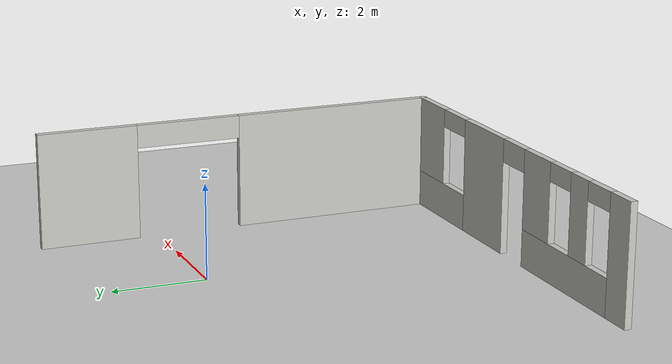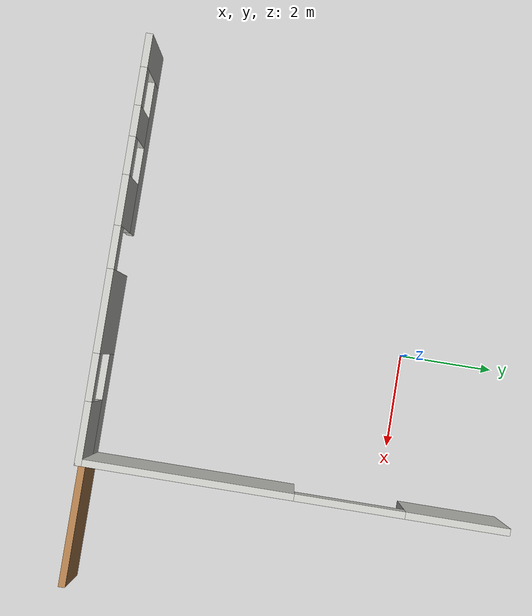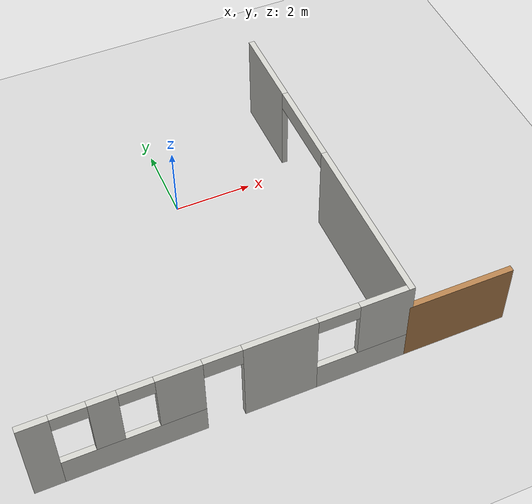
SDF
<sdf version="1.6">
 <world name="default">
  <model name="ground_plane">
   <static>1</static>
   <link name="link">
    <collision name="collision">
     <geometry><plane><normal>0 0 1</normal><size>100 100</size></plane></geometry>
     <surface>
      <contact><collide_bitmask>65535</collide_bitmask></contact>
      <friction><ode><mu>100</mu><mu2>50</mu2></ode></friction>
     </surface>
    </collision>
    <visual name="visual">
     <cast_shadows>0</cast_shadows>
     <geometry><plane><normal>0 0 1</normal><size>100 100</size></plane></geometry>
     <material>
      <script><uri>file://media/materials/scripts/gazebo.material</uri><name>Gazebo/Grey</name></script>
     </material>
    </visual>
   </link>
  </model>
  <model name="house">
   <link name="Wall_2">
    <pose>-1.29996 -6.34794 0 0 0 -0.000226</pose>
    <inertial>
     <mass>1</mass>
     <inertia><ixx>1</ixx><ixy>0</ixy><ixz>0</ixz><iyy>1</iyy><iyz>0</iyz><izz>1</izz></inertia>
    </inertial>
    <visual name="Wall_2_Visual_2">
     <pose>-2.14 0 0.4 0 -0 0</pose>
     <geometry><box><size>3.31 0.15 0.8</size></box></geometry>
     <material>
      <script><uri>file://media/materials/scripts/gazebo.material</uri><name>Gazebo/CeilingTiled</name></script>
      <ambient>1 1 1 1</ambient>
      <shader type="pixel"><normal_map>__default__</normal_map></shader>
      <diffuse>0.7 0.7 0.7 1</diffuse>
      <specular>0.01 0.01 0.01 1</specular>
      <emissive>0 0 0 1</emissive>
     </material>
     <meta><layer>0</layer></meta>
    </visual>
    <visual name="Wall_2_Visual_3">
     <pose>3.33488 0 0.4 0 -0 0</pose>
     <geometry><box><size>2.33037 0.15 0.8</size></box></geometry>
     <material>
      <script><uri>file://media/materials/scripts/gazebo.material</uri><name>Gazebo/CeilingTiled</name></script>
      <ambient>1 1 1 1</ambient>
      <shader type="pixel"><normal_map>__default__</normal_map></shader>
      <diffuse>0.7 0.7 0.7 1</diffuse>
      <specular>0.01 0.01 0.01 1</specular>
      <emissive>0 0 0 1</emissive>
     </material>
     <meta><layer>0</layer></meta>
    </visual>
    <visual name="Wall_2_Visual_4">
     <pose>-2.67 0 1.65 0 -0 0</pose>
     <geometry><box><size>0.65 0.15 1.7</size></box></geometry>
     <material>
      <script><uri>file://media/materials/scripts/gazebo.material</uri><name>Gazebo/CeilingTiled</name></script>
      <ambient>1 1 1 1</ambient>
      <shader type="pixel"><normal_map>__default__</normal_map></shader>
      <diffuse>0.7 0.7 0.7 1</diffuse>
      <specular>0.01 0.01 0.01 1</specular>
      <emissive>0 0 0 1</emissive>
     </material>
     <meta><layer>0</layer></meta>
    </visual>
    <visual name="Wall_2_Visual_1">
     <pose>1.29235 0 1.25 0 -0 0</pose>
     <geometry><box><size>1.75469 0.15 2.5</size></box></geometry>
     <material>
      <script><uri>file://media/materials/scripts/gazebo.material</uri><name>Gazebo/CeilingTiled</name></script>
      <ambient>1 1 1 1</ambient>
      <shader type="pixel"><normal_map>__default__</normal_map></shader>
      <diffuse>0.7 0.7 0.7 1</diffuse>
      <specular>0.01 0.01 0.01 1</specular>
      <emissive>0 0 0 1</emissive>
     </material>
     <meta><layer>0</layer></meta>
    </visual>
    <visual name="Wall_2_Visual_11">
     <pose>2.66969 0 2.3 0 -0 0</pose>
     <geometry><box><size>1 0.15 0.4</size></box></geometry>
     <material>
      <script><uri>file://media/materials/scripts/gazebo.material</uri><name>Gazebo/CeilingTiled</name></script>
      <ambient>1 1 1 1</ambient>
      <shader type="pixel"><normal_map>__default__</normal_map></shader>
      <diffuse>0.7 0.7 0.7 1</diffuse>
      <specular>0.01 0.01 0.01 1</specular>
      <emissive>0 0 0 1</emissive>
     </material>
     <meta><layer>0</layer></meta>
    </visual>
    <visual name="Wall_2_Visual_6">
     <pose>-1.015 0 1.65 0 -0 0</pose>
     <geometry><box><size>1.06 0.15 1.7</size></box></geometry>
     <material>
      <script><uri>file://media/materials/scripts/gazebo.material</uri><name>Gazebo/CeilingTiled</name></script>
      <ambient>1 1 1 1</ambient>
      <shader type="pixel"><normal_map>__default__</normal_map></shader>
      <diffuse>0.7 0.7 0.7 1</diffuse>
      <specular>0.01 0.01 0.01 1</specular>
      <emissive>0 0 0 1</emissive>
     </material>
     <meta><layer>0</layer></meta>
    </visual>
    <visual name="Wall_2_Visual_5">
     <pose>-1.015 0 1.65 0 -0 0</pose>
     <geometry><box><size>1.06 0.15 1.7</size></box></geometry>
     <material>
      <script><uri>file://media/materials/scripts/gazebo.material</uri><name>Gazebo/CeilingTiled</name></script>
      <ambient>1 1 1 1</ambient>
      <shader type="pixel"><normal_map>__default__</normal_map></shader>
      <diffuse>0.7 0.7 0.7 1</diffuse>
      <specular>0.01 0.01 0.01 1</specular>
      <emissive>0 0 0 1</emissive>
     </material>
     <meta><layer>0</layer></meta>
    </visual>
    <visual name="Wall_2_Visual_9">
     <pose>-0.035 0 2.25 0 -0 0</pose>
     <geometry><box><size>0.9 0.15 0.5</size></box></geometry>
     <material>
      <script><uri>file://media/materials/scripts/gazebo.material</uri><name>Gazebo/CeilingTiled</name></script>
      <ambient>1 1 1 1</ambient>
      <shader type="pixel"><normal_map>__default__</normal_map></shader>
      <diffuse>0.7 0.7 0.7 1</diffuse>
      <specular>0.01 0.01 0.01 1</specular>
      <emissive>0 0 0 1</emissive>
     </material>
     <meta><layer>0</layer></meta>
    </visual>
    <visual name="Wall_2_Visual_12">
     <pose>-1.945 0 2.3 0 -0 0</pose>
     <geometry><box><size>0.8 0.15 0.4</size></box></geometry>
     <material>
      <script><uri>file://media/materials/scripts/gazebo.material</uri><name>Gazebo/CeilingTiled</name></script>
      <ambient>1 1 1 1</ambient>
      <shader type="pixel"><normal_map>__default__</normal_map></shader>
      <diffuse>0.7 0.7 0.7 1</diffuse>
      <specular>0.01 0.01 0.01 1</specular>
      <emissive>0 0 0 1</emissive>
     </material>
     <meta><layer>0</layer></meta>
    </visual>
    <visual name="Wall_2_Visual_0">
     <pose>-4.14753 0 1.25 0 -0 0</pose>
     <geometry><box><size>0.705065 0.15 2.5</size></box></geometry>
     <material>
      <script><uri>file://media/materials/scripts/gazebo.material</uri><name>Gazebo/CeilingTiled</name></script>
      <ambient>1 1 1 1</ambient>
      <shader type="pixel"><normal_map>__default__</normal_map></shader>
      <diffuse>1 1 1 1</diffuse>
      <specular>0 0 0 1</specular>
      <emissive>0 0 0 1</emissive>
     </material>
     <meta><layer>0</layer></meta>
    </visual>
    <visual name="Wall_2_Visual_10">
     <pose>-3.395 0 2.3 0 -0 0</pose>
     <geometry><box><size>0.8 0.15 0.4</size></box></geometry>
     <material>
      <script><uri>file://media/materials/scripts/gazebo.material</uri><name>Gazebo/CeilingTiled</name></script>
      <ambient>1 1 1 1</ambient>
      <shader type="pixel"><normal_map>__default__</normal_map></shader>
      <diffuse>0.7 0.7 0.7 1</diffuse>
      <specular>0.01 0.01 0.01 1</specular>
      <emissive>0 0 0 1</emissive>
     </material>
     <meta><layer>0</layer></meta>
    </visual>
    <visual name="Wall_2_Visual_7">
     <pose>3.83488 0 1.65 0 -0 0</pose>
     <geometry><box><size>1.33037 0.15 1.7</size></box></geometry>
     <material>
      <script><uri>file://media/materials/scripts/gazebo.material</uri><name>Gazebo/CeilingTiled</name></script>
      <ambient>1 1 1 1</ambient>
      <shader type="pixel"><normal_map>__default__</normal_map></shader>
      <diffuse>0.7 0.7 0.7 1</diffuse>
      <specular>0.01 0.01 0.01 1</specular>
      <emissive>0 0 0 1</emissive>
     </material>
     <meta><layer>0</layer></meta>
    </visual>
    <visual name="Wall_2_Visual_8">
     <pose>-0.035 0 2.25 0 -0 0</pose>
     <geometry><box><size>0.9 0.15 0.5</size></box></geometry>
     <material>
      <script><uri>file://media/materials/scripts/gazebo.material</uri><name>Gazebo/CeilingTiled</name></script>
      <ambient>1 1 1 1</ambient>
      <shader type="pixel"><normal_map>__default__</normal_map></shader>
      <diffuse>0.7 0.7 0.7 1</diffuse>
      <specular>0.01 0.01 0.01 1</specular>
      <emissive>0 0 0 1</emissive>
     </material>
     <meta><layer>0</layer></meta>
    </visual>
    <collision name="Wall_2_Collision_11">
     <pose>2.66969 0 2.3 0 -0 0</pose>
     <geometry><box><size>1 0.15 0.4</size></box></geometry>
     <surface>
      <friction>
       <ode><mu>1</mu><mu2>1</mu2><fdir1>0 0 0</fdir1><slip1>0</slip1><slip2>0</slip2></ode>
       <torsional>
        <coefficient>1</coefficient>
        <patch_radius>0</patch_radius>
        <surface_radius>0</surface_radius>
        <use_patch_radius>1</use_patch_radius>
        <ode><slip>0</slip></ode>
       </torsional>
      </friction>
      <bounce><restitution_coefficient>0</restitution_coefficient><threshold>1e+06</threshold></bounce>
      <contact>
       <collide_without_contact>0</collide_without_contact>
       <collide_without_contact_bitmask>1</collide_without_contact_bitmask>
       <collide_bitmask>1</collide_bitmask>
       <ode>
        <soft_cfm>0</soft_cfm>
        <soft_erp>0.2</soft_erp>
        <kp>1e+13</kp>
        <kd>1</kd>
        <max_vel>0.01</max_vel>
        <min_depth>0</min_depth>
       </ode>
       <bullet>
        <split_impulse>1</split_impulse>
        <split_impulse_penetration_threshold>-0.01</split_impulse_penetration_threshold>
        <soft_cfm>0</soft_cfm>
        <soft_erp>0.2</soft_erp>
        <kp>1e+13</kp>
        <kd>1</kd>
       </bullet>
      </contact>
     </surface>
    </collision>
    <collision name="Wall_2_Collision_8">
     <pose>-0.035 0 2.25 0 -0 0</pose>
     <geometry><box><size>0.9 0.15 0.5</size></box></geometry>
     <surface>
      <friction>
       <ode><mu>1</mu><mu2>1</mu2><fdir1>0 0 0</fdir1><slip1>0</slip1><slip2>0</slip2></ode>
       <torsional>
        <coefficient>1</coefficient>
        <patch_radius>0</patch_radius>
        <surface_radius>0</surface_radius>
        <use_patch_radius>1</use_patch_radius>
        <ode><slip>0</slip></ode>
       </torsional>
      </friction>
      <bounce><restitution_coefficient>0</restitution_coefficient><threshold>1e+06</threshold></bounce>
      <contact>
       <collide_without_contact>0</collide_without_contact>
       <collide_without_contact_bitmask>1</collide_without_contact_bitmask>
       <collide_bitmask>1</collide_bitmask>
       <ode>
        <soft_cfm>0</soft_cfm>
        <soft_erp>0.2</soft_erp>
        <kp>1e+13</kp>
        <kd>1</kd>
        <max_vel>0.01</max_vel>
        <min_depth>0</min_depth>
       </ode>
       <bullet>
        <split_impulse>1</split_impulse>
        <split_impulse_penetration_threshold>-0.01</split_impulse_penetration_threshold>
        <soft_cfm>0</soft_cfm>
        <soft_erp>0.2</soft_erp>
        <kp>1e+13</kp>
        <kd>1</kd>
       </bullet>
      </contact>
     </surface>
    </collision>
    <collision name="Wall_2_Collision_4">
     <pose>-2.67 0 1.65 0 -0 0</pose>
     <geometry><box><size>0.65 0.15 1.7</size></box></geometry>
     <surface>
      <friction>
       <ode><mu>1</mu><mu2>1</mu2><fdir1>0 0 0</fdir1><slip1>0</slip1><slip2>0</slip2></ode>
       <torsional>
        <coefficient>1</coefficient>
        <patch_radius>0</patch_radius>
        <surface_radius>0</surface_radius>
        <use_patch_radius>1</use_patch_radius>
        <ode><slip>0</slip></ode>
       </torsional>
      </friction>
      <bounce><restitution_coefficient>0</restitution_coefficient><threshold>1e+06</threshold></bounce>
      <contact>
       <collide_without_contact>0</collide_without_contact>
       <collide_without_contact_bitmask>1</collide_without_contact_bitmask>
       <collide_bitmask>1</collide_bitmask>
       <ode>
        <soft_cfm>0</soft_cfm>
        <soft_erp>0.2</soft_erp>
        <kp>1e+13</kp>
        <kd>1</kd>
        <max_vel>0.01</max_vel>
        <min_depth>0</min_depth>
       </ode>
       <bullet>
        <split_impulse>1</split_impulse>
        <split_impulse_penetration_threshold>-0.01</split_impulse_penetration_threshold>
        <soft_cfm>0</soft_cfm>
        <soft_erp>0.2</soft_erp>
        <kp>1e+13</kp>
        <kd>1</kd>
       </bullet>
      </contact>
     </surface>
    </collision>
    <collision name="Wall_2_Collision_2">
     <pose>-2.14 0 0.4 0 -0 0</pose>
     <geometry><box><size>3.31 0.15 0.8</size></box></geometry>
     <surface>
      <friction>
       <ode><mu>1</mu><mu2>1</mu2><fdir1>0 0 0</fdir1><slip1>0</slip1><slip2>0</slip2></ode>
       <torsional>
        <coefficient>1</coefficient>
        <patch_radius>0</patch_radius>
        <surface_radius>0</surface_radius>
        <use_patch_radius>1</use_patch_radius>
        <ode><slip>0</slip></ode>
       </torsional>
      </friction>
      <bounce><restitution_coefficient>0</restitution_coefficient><threshold>1e+06</threshold></bounce>
      <contact>
       <collide_without_contact>0</collide_without_contact>
       <collide_without_contact_bitmask>1</collide_without_contact_bitmask>
       <collide_bitmask>1</collide_bitmask>
       <ode>
        <soft_cfm>0</soft_cfm>
        <soft_erp>0.2</soft_erp>
        <kp>1e+13</kp>
        <kd>1</kd>
        <max_vel>0.01</max_vel>
        <min_depth>0</min_depth>
       </ode>
       <bullet>
        <split_impulse>1</split_impulse>
        <split_impulse_penetration_threshold>-0.01</split_impulse_penetration_threshold>
        <soft_cfm>0</soft_cfm>
        <soft_erp>0.2</soft_erp>
        <kp>1e+13</kp>
        <kd>1</kd>
       </bullet>
      </contact>
     </surface>
    </collision>
    <collision name="Wall_2_Collision_1">
     <pose>1.29235 0 1.25 0 -0 0</pose>
     <geometry><box><size>1.75469 0.15 2.5</size></box></geometry>
     <surface>
      <friction>
       <ode><mu>1</mu><mu2>1</mu2><fdir1>0 0 0</fdir1><slip1>0</slip1><slip2>0</slip2></ode>
       <torsional>
        <coefficient>1</coefficient>
        <patch_radius>0</patch_radius>
        <surface_radius>0</surface_radius>
        <use_patch_radius>1</use_patch_radius>
        <ode><slip>0</slip></ode>
       </torsional>
      </friction>
      <bounce><restitution_coefficient>0</restitution_coefficient><threshold>1e+06</threshold></bounce>
      <contact>
       <collide_without_contact>0</collide_without_contact>
       <collide_without_contact_bitmask>1</collide_without_contact_bitmask>
       <collide_bitmask>1</collide_bitmask>
       <ode>
        <soft_cfm>0</soft_cfm>
        <soft_erp>0.2</soft_erp>
        <kp>1e+13</kp>
        <kd>1</kd>
        <max_vel>0.01</max_vel>
        <min_depth>0</min_depth>
       </ode>
       <bullet>
        <split_impulse>1</split_impulse>
        <split_impulse_penetration_threshold>-0.01</split_impulse_penetration_threshold>
        <soft_cfm>0</soft_cfm>
        <soft_erp>0.2</soft_erp>
        <kp>1e+13</kp>
        <kd>1</kd>
       </bullet>
      </contact>
     </surface>
    </collision>
    <collision name="Wall_2_Collision_12">
     <pose>-1.945 0 2.3 0 -0 0</pose>
     <geometry><box><size>0.8 0.15 0.4</size></box></geometry>
     <surface>
      <friction>
       <ode><mu>1</mu><mu2>1</mu2><fdir1>0 0 0</fdir1><slip1>0</slip1><slip2>0</slip2></ode>
       <torsional>
        <coefficient>1</coefficient>
        <patch_radius>0</patch_radius>
        <surface_radius>0</surface_radius>
        <use_patch_radius>1</use_patch_radius>
        <ode><slip>0</slip></ode>
       </torsional>
      </friction>
      <bounce><restitution_coefficient>0</restitution_coefficient><threshold>1e+06</threshold></bounce>
      <contact>
       <collide_without_contact>0</collide_without_contact>
       <collide_without_contact_bitmask>1</collide_without_contact_bitmask>
       <collide_bitmask>1</collide_bitmask>
       <ode>
        <soft_cfm>0</soft_cfm>
        <soft_erp>0.2</soft_erp>
        <kp>1e+13</kp>
        <kd>1</kd>
        <max_vel>0.01</max_vel>
        <min_depth>0</min_depth>
       </ode>
       <bullet>
        <split_impulse>1</split_impulse>
        <split_impulse_penetration_threshold>-0.01</split_impulse_penetration_threshold>
        <soft_cfm>0</soft_cfm>
        <soft_erp>0.2</soft_erp>
        <kp>1e+13</kp>
        <kd>1</kd>
       </bullet>
      </contact>
     </surface>
    </collision>
    <collision name="Wall_2_Collision_6">
     <pose>-1.015 0 1.65 0 -0 0</pose>
     <geometry><box><size>1.06 0.15 1.7</size></box></geometry>
     <surface>
      <friction>
       <ode><mu>1</mu><mu2>1</mu2><fdir1>0 0 0</fdir1><slip1>0</slip1><slip2>0</slip2></ode>
       <torsional>
        <coefficient>1</coefficient>
        <patch_radius>0</patch_radius>
        <surface_radius>0</surface_radius>
        <use_patch_radius>1</use_patch_radius>
        <ode><slip>0</slip></ode>
       </torsional>
      </friction>
      <bounce><restitution_coefficient>0</restitution_coefficient><threshold>1e+06</threshold></bounce>
      <contact>
       <collide_without_contact>0</collide_without_contact>
       <collide_without_contact_bitmask>1</collide_without_contact_bitmask>
       <collide_bitmask>1</collide_bitmask>
       <ode>
        <soft_cfm>0</soft_cfm>
        <soft_erp>0.2</soft_erp>
        <kp>1e+13</kp>
        <kd>1</kd>
        <max_vel>0.01</max_vel>
        <min_depth>0</min_depth>
       </ode>
       <bullet>
        <split_impulse>1</split_impulse>
        <split_impulse_penetration_threshold>-0.01</split_impulse_penetration_threshold>
        <soft_cfm>0</soft_cfm>
        <soft_erp>0.2</soft_erp>
        <kp>1e+13</kp>
        <kd>1</kd>
       </bullet>
      </contact>
     </surface>
    </collision>
    <collision name="Wall_2_Collision_10">
     <pose>-3.395 0 2.3 0 -0 0</pose>
     <geometry><box><size>0.8 0.15 0.4</size></box></geometry>
     <surface>
      <friction>
       <ode><mu>1</mu><mu2>1</mu2><fdir1>0 0 0</fdir1><slip1>0</slip1><slip2>0</slip2></ode>
       <torsional>
        <coefficient>1</coefficient>
        <patch_radius>0</patch_radius>
        <surface_radius>0</surface_radius>
        <use_patch_radius>1</use_patch_radius>
        <ode><slip>0</slip></ode>
       </torsional>
      </friction>
      <bounce><restitution_coefficient>0</restitution_coefficient><threshold>1e+06</threshold></bounce>
      <contact>
       <collide_without_contact>0</collide_without_contact>
       <collide_without_contact_bitmask>1</collide_without_contact_bitmask>
       <collide_bitmask>1</collide_bitmask>
       <ode>
        <soft_cfm>0</soft_cfm>
        <soft_erp>0.2</soft_erp>
        <kp>1e+13</kp>
        <kd>1</kd>
        <max_vel>0.01</max_vel>
        <min_depth>0</min_depth>
       </ode>
       <bullet>
        <split_impulse>1</split_impulse>
        <split_impulse_penetration_threshold>-0.01</split_impulse_penetration_threshold>
        <soft_cfm>0</soft_cfm>
        <soft_erp>0.2</soft_erp>
        <kp>1e+13</kp>
        <kd>1</kd>
       </bullet>
      </contact>
     </surface>
    </collision>
    <collision name="Wall_2_Collision_7">
     <pose>3.83488 0 1.65 0 -0 0</pose>
     <geometry><box><size>1.33037 0.15 1.7</size></box></geometry>
     <surface>
      <friction>
       <ode><mu>1</mu><mu2>1</mu2><fdir1>0 0 0</fdir1><slip1>0</slip1><slip2>0</slip2></ode>
       <torsional>
        <coefficient>1</coefficient>
        <patch_radius>0</patch_radius>
        <surface_radius>0</surface_radius>
        <use_patch_radius>1</use_patch_radius>
        <ode><slip>0</slip></ode>
       </torsional>
      </friction>
      <bounce><restitution_coefficient>0</restitution_coefficient><threshold>1e+06</threshold></bounce>
      <contact>
       <collide_without_contact>0</collide_without_contact>
       <collide_without_contact_bitmask>1</collide_without_contact_bitmask>
       <collide_bitmask>1</collide_bitmask>
       <ode>
        <soft_cfm>0</soft_cfm>
        <soft_erp>0.2</soft_erp>
        <kp>1e+13</kp>
        <kd>1</kd>
        <max_vel>0.01</max_vel>
        <min_depth>0</min_depth>
       </ode>
       <bullet>
        <split_impulse>1</split_impulse>
        <split_impulse_penetration_threshold>-0.01</split_impulse_penetration_threshold>
        <soft_cfm>0</soft_cfm>
        <soft_erp>0.2</soft_erp>
        <kp>1e+13</kp>
        <kd>1</kd>
       </bullet>
      </contact>
     </surface>
    </collision>
    <collision name="Wall_2_Collision_5">
     <pose>-1.015 0 1.65 0 -0 0</pose>
     <geometry><box><size>1.06 0.15 1.7</size></box></geometry>
     <surface>
      <friction>
       <ode><mu>1</mu><mu2>1</mu2><fdir1>0 0 0</fdir1><slip1>0</slip1><slip2>0</slip2></ode>
       <torsional>
        <coefficient>1</coefficient>
        <patch_radius>0</patch_radius>
        <surface_radius>0</surface_radius>
        <use_patch_radius>1</use_patch_radius>
        <ode><slip>0</slip></ode>
       </torsional>
      </friction>
      <bounce><restitution_coefficient>0</restitution_coefficient><threshold>1e+06</threshold></bounce>
      <contact>
       <collide_without_contact>0</collide_without_contact>
       <collide_without_contact_bitmask>1</collide_without_contact_bitmask>
       <collide_bitmask>1</collide_bitmask>
       <ode>
        <soft_cfm>0</soft_cfm>
        <soft_erp>0.2</soft_erp>
        <kp>1e+13</kp>
        <kd>1</kd>
        <max_vel>0.01</max_vel>
        <min_depth>0</min_depth>
       </ode>
       <bullet>
        <split_impulse>1</split_impulse>
        <split_impulse_penetration_threshold>-0.01</split_impulse_penetration_threshold>
        <soft_cfm>0</soft_cfm>
        <soft_erp>0.2</soft_erp>
        <kp>1e+13</kp>
        <kd>1</kd>
       </bullet>
      </contact>
     </surface>
    </collision>
    <collision name="Wall_2_Collision_9">
     <pose>-0.035 0 2.25 0 -0 0</pose>
     <geometry><box><size>0.9 0.15 0.5</size></box></geometry>
     <surface>
      <friction>
       <ode><mu>1</mu><mu2>1</mu2><fdir1>0 0 0</fdir1><slip1>0</slip1><slip2>0</slip2></ode>
       <torsional>
        <coefficient>1</coefficient>
        <patch_radius>0</patch_radius>
        <surface_radius>0</surface_radius>
        <use_patch_radius>1</use_patch_radius>
        <ode><slip>0</slip></ode>
       </torsional>
      </friction>
      <bounce><restitution_coefficient>0</restitution_coefficient><threshold>1e+06</threshold></bounce>
      <contact>
       <collide_without_contact>0</collide_without_contact>
       <collide_without_contact_bitmask>1</collide_without_contact_bitmask>
       <collide_bitmask>1</collide_bitmask>
       <ode>
        <soft_cfm>0</soft_cfm>
        <soft_erp>0.2</soft_erp>
        <kp>1e+13</kp>
        <kd>1</kd>
        <max_vel>0.01</max_vel>
        <min_depth>0</min_depth>
       </ode>
       <bullet>
        <split_impulse>1</split_impulse>
        <split_impulse_penetration_threshold>-0.01</split_impulse_penetration_threshold>
        <soft_cfm>0</soft_cfm>
        <soft_erp>0.2</soft_erp>
        <kp>1e+13</kp>
        <kd>1</kd>
       </bullet>
      </contact>
     </surface>
    </collision>
    <collision name="Wall_2_Collision_0">
     <pose>-4.14753 0 1.25 0 -0 0</pose>
     <geometry><box><size>0.705065 0.15 2.5</size></box></geometry>
     <surface>
      <friction>
       <ode><mu>1</mu><mu2>1</mu2><fdir1>0 0 0</fdir1><slip1>0</slip1><slip2>0</slip2></ode>
       <torsional>
        <coefficient>1</coefficient>
        <patch_radius>0</patch_radius>
        <surface_radius>0</surface_radius>
        <use_patch_radius>1</use_patch_radius>
        <ode><slip>0</slip></ode>
       </torsional>
      </friction>
      <bounce><restitution_coefficient>0</restitution_coefficient><threshold>1e+06</threshold></bounce>
      <contact>
       <collide_without_contact>0</collide_without_contact>
       <collide_without_contact_bitmask>1</collide_without_contact_bitmask>
       <collide_bitmask>1</collide_bitmask>
       <ode>
        <soft_cfm>0</soft_cfm>
        <soft_erp>0.2</soft_erp>
        <kp>1e+13</kp>
        <kd>1</kd>
        <max_vel>0.01</max_vel>
        <min_depth>0</min_depth>
       </ode>
       <bullet>
        <split_impulse>1</split_impulse>
        <split_impulse_penetration_threshold>-0.01</split_impulse_penetration_threshold>
        <soft_cfm>0</soft_cfm>
        <soft_erp>0.2</soft_erp>
        <kp>1e+13</kp>
        <kd>1</kd>
       </bullet>
      </contact>
     </surface>
    </collision>
    <collision name="Wall_2_Collision_3">
     <pose>3.33488 0 0.4 0 -0 0</pose>
     <geometry><box><size>2.33037 0.15 0.8</size></box></geometry>
     <surface>
      <friction>
       <ode><mu>1</mu><mu2>1</mu2><fdir1>0 0 0</fdir1><slip1>0</slip1><slip2>0</slip2></ode>
       <torsional>
        <coefficient>1</coefficient>
        <patch_radius>0</patch_radius>
        <surface_radius>0</surface_radius>
        <use_patch_radius>1</use_patch_radius>
        <ode><slip>0</slip></ode>
       </torsional>
      </friction>
      <bounce><restitution_coefficient>0</restitution_coefficient><threshold>1e+06</threshold></bounce>
      <contact>
       <collide_without_contact>0</collide_without_contact>
       <collide_without_contact_bitmask>1</collide_without_contact_bitmask>
       <collide_bitmask>1</collide_bitmask>
       <ode>
        <soft_cfm>0</soft_cfm>
        <soft_erp>0.2</soft_erp>
        <kp>1e+13</kp>
        <kd>1</kd>
        <max_vel>0.01</max_vel>
        <min_depth>0</min_depth>
       </ode>
       <bullet>
        <split_impulse>1</split_impulse>
        <split_impulse_penetration_threshold>-0.01</split_impulse_penetration_threshold>
        <soft_cfm>0</soft_cfm>
        <soft_erp>0.2</soft_erp>
        <kp>1e+13</kp>
        <kd>1</kd>
       </bullet>
      </contact>
     </surface>
    </collision>
   </link>
   <link name="Wall_3">
    <pose>3.12504 -1.92294 0 0 -0 1.5708</pose>
    <inertial>
     <mass>1</mass>
     <inertia><ixx>1</ixx><ixy>0</ixy><ixz>0</ixz><iyy>1</iyy><iyz>0</iyz><izz>1</izz></inertia>
    </inertial>
    <visual name="Wall_3_Visual_2">
     <pose>1.18413 0 2.25 0 -0 0</pose>
     <geometry><box><size>2.3 0.15 0.5</size></box></geometry>
     <material>
      <script><uri>file://media/materials/scripts/gazebo.material</uri><name>Gazebo/CeilingTiled</name></script>
      <ambient>1 1 1 1</ambient>
      <shader type="pixel"><normal_map>__default__</normal_map></shader>
      <diffuse>1 1 1 1</diffuse>
      <specular>0 0 0 1</specular>
      <emissive>0 0 0 1</emissive>
     </material>
     <meta><layer>0</layer></meta>
    </visual>
    <visual name="Wall_3_Visual_1">
     <pose>3.41751 0 1.25 0 -0 0</pose>
     <geometry><box><size>2.16676 0.15 2.5</size></box></geometry>
     <material>
      <script><uri>file://media/materials/scripts/gazebo.material</uri><name>Gazebo/CeilingTiled</name></script>
      <ambient>1 1 1 1</ambient>
      <shader type="pixel"><normal_map>__default__</normal_map></shader>
      <diffuse>1 1 1 1</diffuse>
      <specular>0 0 0 1</specular>
      <emissive>0 0 0 1</emissive>
     </material>
     <meta><layer>0</layer></meta>
    </visual>
    <visual name="Wall_3_Visual_0">
     <pose>-2.23338 0 1.25 0 -0 0</pose>
     <geometry><box><size>4.53502 0.15 2.5</size></box></geometry>
     <material>
      <script><uri>file://media/materials/scripts/gazebo.material</uri><name>Gazebo/CeilingTiled</name></script>
      <ambient>1 1 1 1</ambient>
      <shader type="pixel"><normal_map>__default__</normal_map></shader>
      <diffuse>1 1 1 1</diffuse>
      <specular>0 0 0 1</specular>
      <emissive>0 0 0 1</emissive>
     </material>
     <meta><layer>0</layer></meta>
    </visual>
    <collision name="Wall_3_Collision_1">
     <pose>3.41751 0 1.25 0 -0 0</pose>
     <geometry><box><size>2.16676 0.15 2.5</size></box></geometry>
     <surface>
      <friction>
       <ode><mu>1</mu><mu2>1</mu2><fdir1>0 0 0</fdir1><slip1>0</slip1><slip2>0</slip2></ode>
       <torsional>
        <coefficient>1</coefficient>
        <patch_radius>0</patch_radius>
        <surface_radius>0</surface_radius>
        <use_patch_radius>1</use_patch_radius>
        <ode><slip>0</slip></ode>
       </torsional>
      </friction>
      <bounce><restitution_coefficient>0</restitution_coefficient><threshold>1e+06</threshold></bounce>
      <contact>
       <collide_without_contact>0</collide_without_contact>
       <collide_without_contact_bitmask>1</collide_without_contact_bitmask>
       <collide_bitmask>1</collide_bitmask>
       <ode>
        <soft_cfm>0</soft_cfm>
        <soft_erp>0.2</soft_erp>
        <kp>1e+13</kp>
        <kd>1</kd>
        <max_vel>0.01</max_vel>
        <min_depth>0</min_depth>
       </ode>
       <bullet>
        <split_impulse>1</split_impulse>
        <split_impulse_penetration_threshold>-0.01</split_impulse_penetration_threshold>
        <soft_cfm>0</soft_cfm>
        <soft_erp>0.2</soft_erp>
        <kp>1e+13</kp>
        <kd>1</kd>
       </bullet>
      </contact>
     </surface>
    </collision>
    <collision name="Wall_3_Collision_0">
     <pose>-2.23338 0 1.25 0 -0 0</pose>
     <geometry><box><size>4.53502 0.15 2.5</size></box></geometry>
     <surface>
      <friction>
       <ode><mu>1</mu><mu2>1</mu2><fdir1>0 0 0</fdir1><slip1>0</slip1><slip2>0</slip2></ode>
       <torsional>
        <coefficient>1</coefficient>
        <patch_radius>0</patch_radius>
        <surface_radius>0</surface_radius>
        <use_patch_radius>1</use_patch_radius>
        <ode><slip>0</slip></ode>
       </torsional>
      </friction>
      <bounce><restitution_coefficient>0</restitution_coefficient><threshold>1e+06</threshold></bounce>
      <contact>
       <collide_without_contact>0</collide_without_contact>
       <collide_without_contact_bitmask>1</collide_without_contact_bitmask>
       <collide_bitmask>1</collide_bitmask>
       <ode>
        <soft_cfm>0</soft_cfm>
        <soft_erp>0.2</soft_erp>
        <kp>1e+13</kp>
        <kd>1</kd>
        <max_vel>0.01</max_vel>
        <min_depth>0</min_depth>
       </ode>
       <bullet>
        <split_impulse>1</split_impulse>
        <split_impulse_penetration_threshold>-0.01</split_impulse_penetration_threshold>
        <soft_cfm>0</soft_cfm>
        <soft_erp>0.2</soft_erp>
        <kp>1e+13</kp>
        <kd>1</kd>
       </bullet>
      </contact>
     </surface>
    </collision>
    <collision name="Wall_3_Collision_2">
     <pose>1.18413 0 2.25 0 -0 0</pose>
     <geometry><box><size>2.3 0.15 0.5</size></box></geometry>
     <surface>
      <friction>
       <ode><mu>1</mu><mu2>1</mu2><fdir1>0 0 0</fdir1><slip1>0</slip1><slip2>0</slip2></ode>
       <torsional>
        <coefficient>1</coefficient>
        <patch_radius>0</patch_radius>
        <surface_radius>0</surface_radius>
        <use_patch_radius>1</use_patch_radius>
        <ode><slip>0</slip></ode>
       </torsional>
      </friction>
      <bounce><restitution_coefficient>0</restitution_coefficient><threshold>1e+06</threshold></bounce>
      <contact>
       <collide_without_contact>0</collide_without_contact>
       <collide_without_contact_bitmask>1</collide_without_contact_bitmask>
       <collide_bitmask>1</collide_bitmask>
       <ode>
        <soft_cfm>0</soft_cfm>
        <soft_erp>0.2</soft_erp>
        <kp>1e+13</kp>
        <kd>1</kd>
        <max_vel>0.01</max_vel>
        <min_depth>0</min_depth>
       </ode>
       <bullet>
        <split_impulse>1</split_impulse>
        <split_impulse_penetration_threshold>-0.01</split_impulse_penetration_threshold>
        <soft_cfm>0</soft_cfm>
        <soft_erp>0.2</soft_erp>
        <kp>1e+13</kp>
        <kd>1</kd>
       </bullet>
      </contact>
     </surface>
    </collision>
   </link>
   <link name="Wall_34">
    <pose>4.42454 -6.35094 0 0 0 -0.001539</pose>
    <inertial>
     <mass>1</mass>
     <inertia><ixx>1</ixx><ixy>0</ixy><ixz>0</ixz><iyy>1</iyy><iyz>0</iyz><izz>1</izz></inertia>
    </inertial>
    <visual name="Wall_34_Visual">
     <pose>0 0 0.9 0 -0 0</pose>
     <geometry><box><size>2.74859 0.15 1.8</size></box></geometry>
     <material>
      <script><uri>file://media/materials/scripts/gazebo.material</uri><name>Gazebo/Wood</name></script>
      <ambient>1 1 1 1</ambient>
      <shader type="pixel"><normal_map>__default__</normal_map></shader>
      <diffuse>1 1 1 1</diffuse>
      <specular>0.2 0.2 0.2 1</specular>
      <emissive>0 0 0 1</emissive>
     </material>
     <meta><layer>0</layer></meta>
    </visual>
    <collision name="Wall_34_Collision">
     <pose>0 0 0.9 0 -0 0</pose>
     <geometry><box><size>2.74859 0.15 1.8</size></box></geometry>
     <surface>
      <friction>
       <ode><mu>1</mu><mu2>1</mu2><fdir1>0 0 0</fdir1><slip1>0</slip1><slip2>0</slip2></ode>
       <torsional>
        <coefficient>1</coefficient>
        <patch_radius>0</patch_radius>
        <surface_radius>0</surface_radius>
        <use_patch_radius>1</use_patch_radius>
        <ode><slip>0</slip></ode>
       </torsional>
      </friction>
      <bounce><restitution_coefficient>0</restitution_coefficient><threshold>1e+06</threshold></bounce>
      <contact>
       <collide_without_contact>0</collide_without_contact>
       <collide_without_contact_bitmask>1</collide_without_contact_bitmask>
       <collide_bitmask>1</collide_bitmask>
       <ode>
        <soft_cfm>0</soft_cfm>
        <soft_erp>0.2</soft_erp>
        <kp>1e+13</kp>
        <kd>1</kd>
        <max_vel>0.01</max_vel>
        <min_depth>0</min_depth>
       </ode>
       <bullet>
        <split_impulse>1</split_impulse>
        <split_impulse_penetration_threshold>-0.01</split_impulse_penetration_threshold>
        <soft_cfm>0</soft_cfm>
        <soft_erp>0.2</soft_erp>
        <kp>1e+13</kp>
        <kd>1</kd>
       </bullet>
      </contact>
     </surface>
    </collision>
   </link>
   <static>1</static>
   <pose>0.117199 0.016408 0 0 -0 0</pose>
  </model>
 </world>
</sdf>
